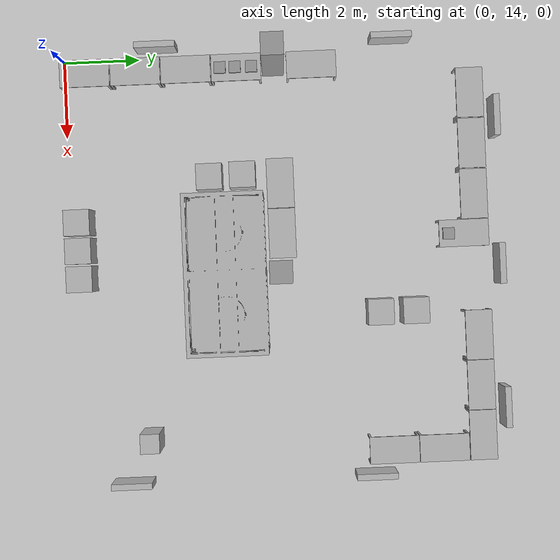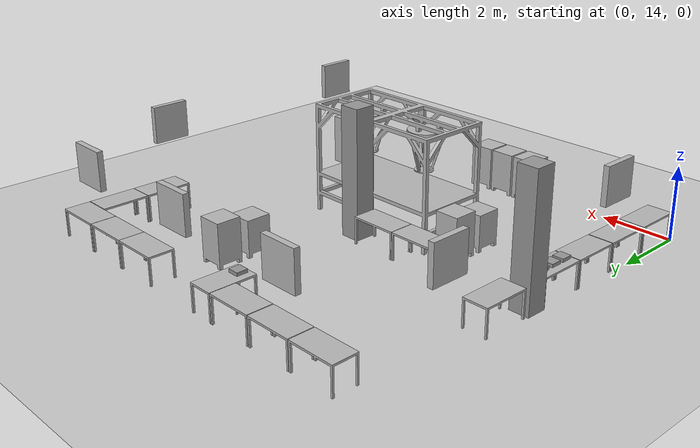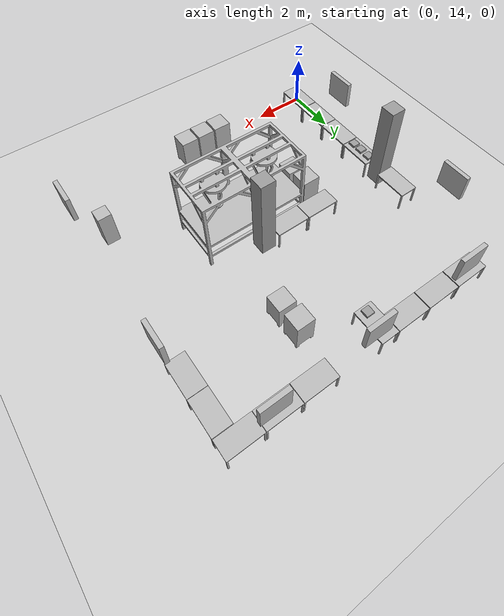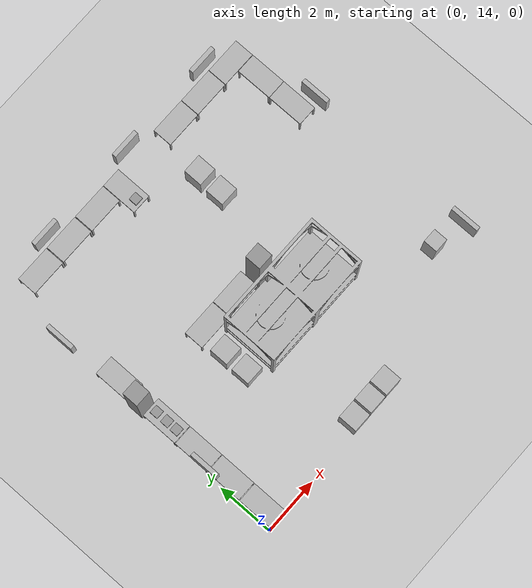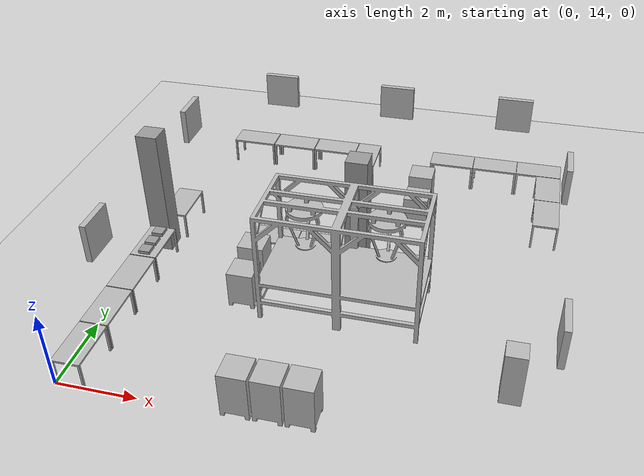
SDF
<sdf version="1.7">
 <world name="default">
  <model name="ground_plane">
   <static>1</static>
   <link name="link">
    <collision name="collision">
     <geometry><plane><normal>0 0 1</normal><size>100 100</size></plane></geometry>
     <surface>
      <contact><collide_bitmask>65535</collide_bitmask></contact>
      <friction><ode><mu>100</mu><mu2>50</mu2></ode></friction>
     </surface>
    </collision>
    <visual name="visual">
     <cast_shadows>0</cast_shadows>
     <geometry><plane><normal>0 0 1</normal><size>100 100</size></plane></geometry>
     <material>
      <script><uri>file://media/materials/scripts/gazebo.material</uri><name>Gazebo/Grey</name></script>
     </material>
    </visual>
   </link>
  </model>
  <model name="moving_box2">
   <pose>10 16 0.5 0 0 0</pose>
   <static>false</static>
   <link name="link">
    <collision name="collision"><geometry><box><size>0.5 0.5 1.8</size></box></geometry></collision>
    <visual name="visual">
     <geometry><box><size>0.5 0.5 1.8</size></box></geometry>
     <material>Gray</material>
    </visual>
   </link>
   <plugin name="move_box_plugin" filename="libmoving_box2_plugin.so"/>
  </model>
  <model name="stolac1">
   <static>1</static>
   <link name="base_link">
    <visual name="visual">
     <geometry>
      <mesh><uri>model://stolac1/meshes/crta_stolac1.STL</uri><scale>0.001 0.001 0.001</scale></mesh>
     </geometry>
    </visual>
    <collision name="collision">
     <pose>0.645 0.35 0.375 0 -0 0</pose>
     <geometry><box><size>1.29 0.7 0.75</size></box></geometry>
    </collision>
   </link>
   <pose>0.75 19.8747 0 0 -0 1.5708</pose>
  </model>
  <model name="crta_stup">
   <link name="link_0">
    <inertial>
     <mass>1</mass>
     <inertia>
      <ixx>0.166667</ixx>
      <ixy>0</ixy>
      <ixz>0</ixz>
      <iyy>0.166667</iyy>
      <iyz>0</iyz>
      <izz>0.166667</izz>
     </inertia>
    </inertial>
    <visual name="visual">
     <geometry><box><size>0.56 0.56 3.5</size></box></geometry>
     <material>
      <lighting>1</lighting>
      <script><uri>file://media/materials/scripts/gazebo.material</uri><name>Gazebo/Grey</name></script>
      <shader type="pixel"><normal_map>__default__</normal_map></shader>
      <ambient>0.3 0.3 0.3 1</ambient>
      <diffuse>0.7 0.7 0.7 1</diffuse>
      <specular>0.01 0.01 0.01 1</specular>
      <emissive>0 0 0 1</emissive>
     </material>
    </visual>
    <collision name="collision">
     <geometry><box><size>0.56 0.56 3.5</size></box></geometry>
     <surface>
      <friction>
       <ode><mu>1</mu><mu2>1</mu2><fdir1>0 0 0</fdir1><slip1>0</slip1><slip2>0</slip2></ode>
       <torsional>
        <coefficient>1</coefficient>
        <patch_radius>0</patch_radius>
        <surface_radius>0</surface_radius>
        <use_patch_radius>1</use_patch_radius>
        <ode><slip>0</slip></ode>
       </torsional>
      </friction>
      <bounce><restitution_coefficient>0</restitution_coefficient><threshold>1e+06</threshold></bounce>
      <contact>
       <collide_without_contact>0</collide_without_contact>
       <collide_without_contact_bitmask>1</collide_without_contact_bitmask>
       <collide_bitmask>1</collide_bitmask>
       <ode>
        <soft_cfm>0</soft_cfm>
        <soft_erp>0.2</soft_erp>
        <kp>1e+13</kp>
        <kd>1</kd>
        <max_vel>0.01</max_vel>
        <min_depth>0</min_depth>
       </ode>
       <bullet>
        <split_impulse>1</split_impulse>
        <split_impulse_penetration_threshold>-0.01</split_impulse_penetration_threshold>
        <soft_cfm>0</soft_cfm>
        <soft_erp>0.2</soft_erp>
        <kp>1e+13</kp>
        <kd>1</kd>
       </bullet>
      </contact>
     </surface>
    </collision>
   </link>
   <static>1</static>
   <pose>5.74 19.52 1.75 0 -0 0</pose>
  </model>
  <model name="crta_stup_clone">
   <link name="link_0">
    <inertial>
     <mass>1</mass>
     <inertia>
      <ixx>0.166667</ixx>
      <ixy>0</ixy>
      <ixz>0</ixz>
      <iyy>0.166667</iyy>
      <iyz>0</iyz>
      <izz>0.166667</izz>
     </inertia>
    </inertial>
    <visual name="visual">
     <geometry><box><size>0.56 0.56 3.5</size></box></geometry>
     <material>
      <lighting>1</lighting>
      <script><uri>file://media/materials/scripts/gazebo.material</uri><name>Gazebo/Grey</name></script>
      <shader type="pixel"><normal_map>__default__</normal_map></shader>
      <ambient>0.3 0.3 0.3 1</ambient>
      <diffuse>0.7 0.7 0.7 1</diffuse>
      <specular>0.01 0.01 0.01 1</specular>
      <emissive>0 0 0 1</emissive>
     </material>
    </visual>
    <collision name="collision">
     <geometry><box><size>0.56 0.56 3.5</size></box></geometry>
     <surface>
      <friction>
       <ode><mu>1</mu><mu2>1</mu2><fdir1>0 0 0</fdir1><slip1>0</slip1><slip2>0</slip2></ode>
       <torsional>
        <coefficient>1</coefficient>
        <patch_radius>0</patch_radius>
        <surface_radius>0</surface_radius>
        <use_patch_radius>1</use_patch_radius>
        <ode><slip>0</slip></ode>
       </torsional>
      </friction>
      <bounce><restitution_coefficient>0</restitution_coefficient><threshold>1e+06</threshold></bounce>
      <contact>
       <collide_without_contact>0</collide_without_contact>
       <collide_without_contact_bitmask>1</collide_without_contact_bitmask>
       <collide_bitmask>1</collide_bitmask>
       <ode>
        <soft_cfm>0</soft_cfm>
        <soft_erp>0.2</soft_erp>
        <kp>1e+13</kp>
        <kd>1</kd>
        <max_vel>0.01</max_vel>
        <min_depth>0</min_depth>
       </ode>
       <bullet>
        <split_impulse>1</split_impulse>
        <split_impulse_penetration_threshold>-0.01</split_impulse_penetration_threshold>
        <soft_cfm>0</soft_cfm>
        <soft_erp>0.2</soft_erp>
        <kp>1e+13</kp>
        <kd>1</kd>
       </bullet>
      </contact>
     </surface>
    </collision>
   </link>
   <static>1</static>
   <pose>0.28 19.52 1.75 -0 -2e-06 -0.0003</pose>
  </model>
  <model name="stolac1_clone">
   <static>1</static>
   <link name="base_link">
    <visual name="visual">
     <geometry>
      <mesh><uri>model://stolac1/meshes/crta_stolac1.STL</uri><scale>0.001 0.001 0.001</scale></mesh>
     </geometry>
    </visual>
    <collision name="collision">
     <pose>0.645 0.35 0.375 0 -0 0</pose>
     <geometry><box><size>1.29 0.7 0.75</size></box></geometry>
    </collision>
   </link>
   <pose>0.75 17.92 0 0 -0 1.5708</pose>
  </model>
  <model name="stolac1_clone_0">
   <static>1</static>
   <link name="base_link">
    <visual name="visual">
     <geometry>
      <mesh><uri>model://stolac1/meshes/crta_stolac1.STL</uri><scale>0.001 0.001 0.001</scale></mesh>
     </geometry>
    </visual>
    <collision name="collision">
     <pose>0.645 0.35 0.375 0 -0 0</pose>
     <geometry><box><size>1.29 0.7 0.75</size></box></geometry>
    </collision>
   </link>
   <pose>0.75 16.608 0 0 -0 1.5708</pose>
  </model>
  <model name="stolac1_clone_1">
   <static>1</static>
   <link name="base_link">
    <visual name="visual">
     <geometry>
      <mesh><uri>model://stolac1/meshes/crta_stolac1.STL</uri><scale>0.001 0.001 0.001</scale></mesh>
     </geometry>
    </visual>
    <collision name="collision">
     <pose>0.645 0.35 0.375 0 -0 0</pose>
     <geometry><box><size>1.29 0.7 0.75</size></box></geometry>
    </collision>
   </link>
   <pose>0.75 15.2957 0 0 -0 1.5708</pose>
  </model>
  <model name="stolac1_clone_2">
   <static>1</static>
   <link name="base_link">
    <visual name="visual">
     <geometry>
      <mesh><uri>model://stolac1/meshes/crta_stolac1.STL</uri><scale>0.001 0.001 0.001</scale></mesh>
     </geometry>
    </visual>
    <collision name="collision">
     <pose>0.645 0.35 0.375 0 -0 0</pose>
     <geometry><box><size>1.29 0.7 0.75</size></box></geometry>
    </collision>
   </link>
   <pose>0.75 13.9784 0 0 -0 1.5708</pose>
  </model>
  <model name="stolac1_clone_7">
   <static>1</static>
   <link name="base_link">
    <visual name="visual">
     <geometry>
      <mesh><uri>model://stolac1/meshes/crta_stolac1.STL</uri><scale>0.001 0.001 0.001</scale></mesh>
     </geometry>
    </visual>
    <collision name="collision">
     <pose>0.645 0.35 0.375 0 -0 0</pose>
     <geometry><box><size>1.29 0.7 0.75</size></box></geometry>
    </collision>
   </link>
   <pose>0.65 24.25 0 0 -0 0</pose>
  </model>
  <model name="stolac1_clone_7_clone">
   <static>1</static>
   <link name="base_link">
    <visual name="visual">
     <geometry>
      <mesh><uri>model://stolac1/meshes/crta_stolac1.STL</uri><scale>0.001 0.001 0.001</scale></mesh>
     </geometry>
    </visual>
    <collision name="collision">
     <pose>0.645 0.35 0.375 0 -0 0</pose>
     <geometry><box><size>1.29 0.7 0.75</size></box></geometry>
    </collision>
   </link>
   <pose>1.96622 24.25 0 0 -0 0</pose>
  </model>
  <model name="stolac1_clone_7_clone_0">
   <static>1</static>
   <link name="base_link">
    <visual name="visual">
     <geometry>
      <mesh><uri>model://stolac1/meshes/crta_stolac1.STL</uri><scale>0.001 0.001 0.001</scale></mesh>
     </geometry>
    </visual>
    <collision name="collision">
     <pose>0.645 0.35 0.375 0 -0 0</pose>
     <geometry><box><size>1.29 0.7 0.75</size></box></geometry>
    </collision>
   </link>
   <pose>3.28164 24.25 0 0 -0 0</pose>
  </model>
  <model name="stolac1_clone_8">
   <static>1</static>
   <link name="base_link">
    <visual name="visual">
     <geometry>
      <mesh><uri>model://stolac1/meshes/crta_stolac1.STL</uri><scale>0.001 0.001 0.001</scale></mesh>
     </geometry>
    </visual>
    <collision name="collision">
     <pose>0.645 0.35 0.375 0 -0 0</pose>
     <geometry><box><size>1.29 0.7 0.75</size></box></geometry>
    </collision>
   </link>
   <pose>5.28721 23.6603 0 0 -0 1.5708</pose>
  </model>
  <model name="stolac1_clone_7_clone_0_clone">
   <static>1</static>
   <link name="base_link">
    <visual name="visual">
     <geometry>
      <mesh><uri>model://stolac1/meshes/crta_stolac1.STL</uri><scale>0.001 0.001 0.001</scale></mesh>
     </geometry>
    </visual>
    <collision name="collision">
     <pose>0.645 0.35 0.375 0 -0 0</pose>
     <geometry><box><size>1.29 0.7 0.75</size></box></geometry>
    </collision>
   </link>
   <pose>9.55232 24.25 0 0 -0 0</pose>
  </model>
  <model name="stolac1_clone_7_clone_0_clone_0">
   <static>1</static>
   <link name="base_link">
    <visual name="visual">
     <geometry>
      <mesh><uri>model://stolac1/meshes/crta_stolac1.STL</uri><scale>0.001 0.001 0.001</scale></mesh>
     </geometry>
    </visual>
    <collision name="collision">
     <pose>0.645 0.35 0.375 0 -0 0</pose>
     <geometry><box><size>1.29 0.7 0.75</size></box></geometry>
    </collision>
   </link>
   <pose>8.2516 24.25 0 0 -0 0</pose>
  </model>
  <model name="stolac1_clone_7_clone_0_clone_1">
   <static>1</static>
   <link name="base_link">
    <visual name="visual">
     <geometry>
      <mesh><uri>model://stolac1/meshes/crta_stolac1.STL</uri><scale>0.001 0.001 0.001</scale></mesh>
     </geometry>
    </visual>
    <collision name="collision">
     <pose>0.645 0.35 0.375 0 -0 0</pose>
     <geometry><box><size>1.29 0.7 0.75</size></box></geometry>
    </collision>
   </link>
   <pose>6.94989 24.25 0 0 -0 0</pose>
  </model>
  <model name="stolac1_clone_8_clone">
   <static>1</static>
   <link name="base_link">
    <visual name="visual">
     <geometry>
      <mesh><uri>model://stolac1/meshes/crta_stolac1.STL</uri><scale>0.001 0.001 0.001</scale></mesh>
     </geometry>
    </visual>
    <collision name="collision">
     <pose>0.645 0.35 0.375 0 -0 0</pose>
     <geometry><box><size>1.29 0.7 0.75</size></box></geometry>
    </collision>
   </link>
   <pose>10.845 22.9418 0 0 -0 1.5708</pose>
  </model>
  <model name="stolac1_clone_8_clone_0">
   <static>1</static>
   <link name="base_link">
    <visual name="visual">
     <geometry>
      <mesh><uri>model://stolac1/meshes/crta_stolac1.STL</uri><scale>0.001 0.001 0.001</scale></mesh>
     </geometry>
    </visual>
    <collision name="collision">
     <pose>0.645 0.35 0.375 0 -0 0</pose>
     <geometry><box><size>1.29 0.7 0.75</size></box></geometry>
    </collision>
   </link>
   <pose>10.8463 21.6409 0 0 -0 1.5708</pose>
  </model>
  <model name="crta_delta_robot">
   <model name="delta_robot">
    <static>1</static>
    <link name="base_link">
     <visual name="visual">
      <geometry>
       <mesh><uri>model://delta_robot/meshes/crta_delta_robot.STL</uri><scale>0.001 0.001 0.001</scale></mesh>
      </geometry>
     </visual>
     <collision name="collision">
      <pose>2 1 1.5 0 -0 0</pose>
      <geometry><box><size>4 2 3</size></box></geometry>
     </collision>
    </link>
    <pose>1e-06 5e-06 0 0 -0 0</pose>
   </model>
   <static>0</static>
   <pose>3.74 17.15 0 0 -0 0</pose>
  </model>
  <model name="stolac1_clone_7_clone_0_clone_1_clone">
   <static>1</static>
   <link name="base_link">
    <visual name="visual">
     <geometry>
      <mesh><uri>model://stolac1/meshes/crta_stolac1.STL</uri><scale>0.001 0.001 0.001</scale></mesh>
     </geometry>
    </visual>
    <collision name="collision">
     <pose>0.645 0.35 0.375 0 -0 0</pose>
     <geometry><box><size>1.29 0.7 0.75</size></box></geometry>
    </collision>
   </link>
   <pose>4.10999 19.2429 0 0 -0 0</pose>
  </model>
  <model name="stolac1_clone_7_clone_0_clone_1_clone_0">
   <static>1</static>
   <link name="base_link">
    <visual name="visual">
     <geometry>
      <mesh><uri>model://stolac1/meshes/crta_stolac1.STL</uri><scale>0.001 0.001 0.001</scale></mesh>
     </geometry>
    </visual>
    <collision name="collision">
     <pose>0.645 0.35 0.375 0 -0 0</pose>
     <geometry><box><size>1.29 0.7 0.75</size></box></geometry>
    </collision>
   </link>
   <pose>2.80473 19.2437 0 0 -0 0</pose>
  </model>
  <model name="kutija1">
   <static>1</static>
   <link name="base_link">
    <visual name="visual">
     <geometry>
      <mesh><uri>model://kutija1/meshes/crta_kutija1.STL</uri><scale>0.001 0.001 0.001</scale></mesh>
     </geometry>
    </visual>
    <collision name="collision">
     <pose>0.335 0.335 0.6 0 -0 0</pose>
     <geometry><box><size>0.67 0.67 1.2</size></box></geometry>
    </collision>
   </link>
   <pose>2.87784 18.2903 0 0 -0 0</pose>
  </model>
  <model name="kutija1_0">
   <static>1</static>
   <link name="base_link">
    <visual name="visual">
     <geometry>
      <mesh><uri>model://kutija2/meshes/crta_kutija2.STL</uri><scale>0.001 0.001 0.001</scale></mesh>
     </geometry>
    </visual>
    <collision name="collision">
     <pose>0.335 0.335 0.5 0 -0 0</pose>
     <geometry><box><size>0.67 0.67 1</size></box></geometry>
    </collision>
   </link>
   <pose>2.88315 17.4229 0 0 -0 0</pose>
  </model>
  <model name="kutija1_clone">
   <static>1</static>
   <link name="base_link">
    <visual name="visual">
     <geometry>
      <mesh><uri>model://kutija1/meshes/crta_kutija1.STL</uri><scale>0.001 0.001 0.001</scale></mesh>
     </geometry>
    </visual>
    <collision name="collision">
     <pose>0.335 0.335 0.6 0 -0 0</pose>
     <geometry><box><size>0.67 0.67 1.2</size></box></geometry>
    </collision>
   </link>
   <pose>5.40022 14.0046 0 0 -0 0</pose>
  </model>
  <model name="kutija1_clone_0">
   <static>1</static>
   <link name="base_link">
    <visual name="visual">
     <geometry>
      <mesh><uri>model://kutija1/meshes/crta_kutija1.STL</uri><scale>0.001 0.001 0.001</scale></mesh>
     </geometry>
    </visual>
    <collision name="collision">
     <pose>0.335 0.335 0.6 0 -0 0</pose>
     <geometry><box><size>0.67 0.67 1.2</size></box></geometry>
    </collision>
   </link>
   <pose>4.67597 13.9994 0 0 -0 0</pose>
  </model>
  <model name="kutija1_clone_1">
   <static>1</static>
   <link name="base_link">
    <visual name="visual">
     <geometry>
      <mesh><uri>model://kutija1/meshes/crta_kutija1.STL</uri><scale>0.001 0.001 0.001</scale></mesh>
     </geometry>
    </visual>
    <collision name="collision">
     <pose>0.335 0.335 0.6 0 -0 0</pose>
     <geometry><box><size>0.67 0.67 1.2</size></box></geometry>
    </collision>
   </link>
   <pose>3.94529 13.9909 0 0 -0 0</pose>
  </model>
  <model name="kutija1_0_clone_0">
   <static>1</static>
   <link name="base_link">
    <visual name="visual">
     <geometry>
      <mesh><uri>model://kutija2/meshes/crta_kutija2.STL</uri><scale>0.001 0.001 0.001</scale></mesh>
     </geometry>
    </visual>
    <collision name="collision">
     <pose>0.335 0.335 0.5 0 -0 0</pose>
     <geometry><box><size>0.67 0.67 1</size></box></geometry>
    </collision>
   </link>
   <pose>6.55778 21.7269 0 0 -0 0</pose>
  </model>
  <model name="kutija1_clone_1_clone">
   <static>1</static>
   <link name="base_link">
    <visual name="visual">
     <geometry>
      <mesh><uri>model://kutija1/meshes/crta_kutija1.STL</uri><scale>0.001 0.001 0.001</scale></mesh>
     </geometry>
    </visual>
    <collision name="collision">
     <pose>0.335 0.335 0.6 0 -0 0</pose>
     <geometry><box><size>0.67 0.67 1.2</size></box></geometry>
    </collision>
   </link>
   <pose>6.54763 22.6166 0 0 -0 0</pose>
  </model>
  <model name="crta_astro">
   <link name="link_1">
    <inertial>
     <mass>1</mass>
     <inertia>
      <ixx>0.166667</ixx>
      <ixy>0</ixy>
      <ixz>0</ixz>
      <iyy>0.166667</iyy>
      <iyz>0</iyz>
      <izz>0.166667</izz>
     </inertia>
    </inertial>
    <visual name="visual">
     <geometry><box><size>0.3 0.3 0.09</size></box></geometry>
     <material>
      <lighting>1</lighting>
      <script><uri>file://media/materials/scripts/gazebo.material</uri><name>Gazebo/Grey</name></script>
      <shader type="pixel"><normal_map>__default__</normal_map></shader>
      <ambient>0.3 0.3 0.3 1</ambient>
      <diffuse>0.7 0.7 0.7 1</diffuse>
      <specular>0.01 0.01 0.01 1</specular>
      <emissive>0 0 0 1</emissive>
     </material>
    </visual>
    <collision name="collision">
     <geometry><box><size>0.3 0.3 0.09</size></box></geometry>
     <surface>
      <friction>
       <ode><mu>1</mu><mu2>1</mu2><fdir1>0 0 0</fdir1><slip1>0</slip1><slip2>0</slip2></ode>
       <torsional>
        <coefficient>1</coefficient>
        <patch_radius>0</patch_radius>
        <surface_radius>0</surface_radius>
        <use_patch_radius>1</use_patch_radius>
        <ode><slip>0</slip></ode>
       </torsional>
      </friction>
      <bounce><restitution_coefficient>0</restitution_coefficient><threshold>1e+06</threshold></bounce>
      <contact>
       <collide_without_contact>0</collide_without_contact>
       <collide_without_contact_bitmask>1</collide_without_contact_bitmask>
       <collide_bitmask>1</collide_bitmask>
       <ode>
        <soft_cfm>0</soft_cfm>
        <soft_erp>0.2</soft_erp>
        <kp>1e+13</kp>
        <kd>1</kd>
        <max_vel>0.01</max_vel>
        <min_depth>0</min_depth>
       </ode>
       <bullet>
        <split_impulse>1</split_impulse>
        <split_impulse_penetration_threshold>-0.01</split_impulse_penetration_threshold>
        <soft_cfm>0</soft_cfm>
        <soft_erp>0.2</soft_erp>
        <kp>1e+13</kp>
        <kd>1</kd>
       </bullet>
      </contact>
     </surface>
    </collision>
   </link>
   <static>0</static>
   <pose>0.400456 18.963 0.795 -0 -0 -0</pose>
  </model>
  <model name="crta_astro_clone">
   <link name="link_1">
    <inertial>
     <mass>1</mass>
     <inertia>
      <ixx>0.166667</ixx>
      <ixy>0</ixy>
      <ixz>0</ixz>
      <iyy>0.166667</iyy>
      <iyz>0</iyz>
      <izz>0.166667</izz>
     </inertia>
    </inertial>
    <visual name="visual">
     <geometry><box><size>0.3 0.3 0.09</size></box></geometry>
     <material>
      <lighting>1</lighting>
      <script><uri>file://media/materials/scripts/gazebo.material</uri><name>Gazebo/Grey</name></script>
      <shader type="pixel"><normal_map>__default__</normal_map></shader>
      <ambient>0.3 0.3 0.3 1</ambient>
      <diffuse>0.7 0.7 0.7 1</diffuse>
      <specular>0.01 0.01 0.01 1</specular>
      <emissive>0 0 0 1</emissive>
     </material>
    </visual>
    <collision name="collision">
     <geometry><box><size>0.3 0.3 0.09</size></box></geometry>
     <surface>
      <friction>
       <ode><mu>1</mu><mu2>1</mu2><fdir1>0 0 0</fdir1><slip1>0</slip1><slip2>0</slip2></ode>
       <torsional>
        <coefficient>1</coefficient>
        <patch_radius>0</patch_radius>
        <surface_radius>0</surface_radius>
        <use_patch_radius>1</use_patch_radius>
        <ode><slip>0</slip></ode>
       </torsional>
      </friction>
      <bounce><restitution_coefficient>0</restitution_coefficient><threshold>1e+06</threshold></bounce>
      <contact>
       <collide_without_contact>0</collide_without_contact>
       <collide_without_contact_bitmask>1</collide_without_contact_bitmask>
       <collide_bitmask>1</collide_bitmask>
       <ode>
        <soft_cfm>0</soft_cfm>
        <soft_erp>0.2</soft_erp>
        <kp>1e+13</kp>
        <kd>1</kd>
        <max_vel>0.01</max_vel>
        <min_depth>0</min_depth>
       </ode>
       <bullet>
        <split_impulse>1</split_impulse>
        <split_impulse_penetration_threshold>-0.01</split_impulse_penetration_threshold>
        <soft_cfm>0</soft_cfm>
        <soft_erp>0.2</soft_erp>
        <kp>1e+13</kp>
        <kd>1</kd>
       </bullet>
      </contact>
     </surface>
    </collision>
   </link>
   <static>0</static>
   <pose>0.400118 18.5366 0.795 -0 -0 -0</pose>
  </model>
  <model name="crta_astro_clone_0">
   <link name="link_1">
    <inertial>
     <mass>1</mass>
     <inertia>
      <ixx>0.166667</ixx>
      <ixy>0</ixy>
      <ixz>0</ixz>
      <iyy>0.166667</iyy>
      <iyz>0</iyz>
      <izz>0.166667</izz>
     </inertia>
    </inertial>
    <visual name="visual">
     <geometry><box><size>0.3 0.3 0.09</size></box></geometry>
     <material>
      <lighting>1</lighting>
      <script><uri>file://media/materials/scripts/gazebo.material</uri><name>Gazebo/Grey</name></script>
      <shader type="pixel"><normal_map>__default__</normal_map></shader>
      <ambient>0.3 0.3 0.3 1</ambient>
      <diffuse>0.7 0.7 0.7 1</diffuse>
      <specular>0.01 0.01 0.01 1</specular>
      <emissive>0 0 0 1</emissive>
     </material>
    </visual>
    <collision name="collision">
     <geometry><box><size>0.3 0.3 0.09</size></box></geometry>
     <surface>
      <friction>
       <ode><mu>1</mu><mu2>1</mu2><fdir1>0 0 0</fdir1><slip1>0</slip1><slip2>0</slip2></ode>
       <torsional>
        <coefficient>1</coefficient>
        <patch_radius>0</patch_radius>
        <surface_radius>0</surface_radius>
        <use_patch_radius>1</use_patch_radius>
        <ode><slip>0</slip></ode>
       </torsional>
      </friction>
      <bounce><restitution_coefficient>0</restitution_coefficient><threshold>1e+06</threshold></bounce>
      <contact>
       <collide_without_contact>0</collide_without_contact>
       <collide_without_contact_bitmask>1</collide_without_contact_bitmask>
       <collide_bitmask>1</collide_bitmask>
       <ode>
        <soft_cfm>0</soft_cfm>
        <soft_erp>0.2</soft_erp>
        <kp>1e+13</kp>
        <kd>1</kd>
        <max_vel>0.01</max_vel>
        <min_depth>0</min_depth>
       </ode>
       <bullet>
        <split_impulse>1</split_impulse>
        <split_impulse_penetration_threshold>-0.01</split_impulse_penetration_threshold>
        <soft_cfm>0</soft_cfm>
        <soft_erp>0.2</soft_erp>
        <kp>1e+13</kp>
        <kd>1</kd>
       </bullet>
      </contact>
     </surface>
    </collision>
   </link>
   <static>0</static>
   <pose>0.400281 18.147 0.795 -0 -0 -0</pose>
  </model>
  <model name="crta_astro_clone_1">
   <link name="link_1">
    <inertial>
     <mass>1</mass>
     <inertia>
      <ixx>0.166667</ixx>
      <ixy>0</ixy>
      <ixz>0</ixz>
      <iyy>0.166667</iyy>
      <iyz>0</iyz>
      <izz>0.166667</izz>
     </inertia>
    </inertial>
    <visual name="visual">
     <geometry><box><size>0.3 0.3 0.09</size></box></geometry>
     <material>
      <lighting>1</lighting>
      <script><uri>file://media/materials/scripts/gazebo.material</uri><name>Gazebo/Grey</name></script>
      <shader type="pixel"><normal_map>__default__</normal_map></shader>
      <ambient>0.3 0.3 0.3 1</ambient>
      <diffuse>0.7 0.7 0.7 1</diffuse>
      <specular>0.01 0.01 0.01 1</specular>
      <emissive>0 0 0 1</emissive>
     </material>
    </visual>
    <collision name="collision">
     <geometry><box><size>0.3 0.3 0.09</size></box></geometry>
     <surface>
      <friction>
       <ode><mu>1</mu><mu2>1</mu2><fdir1>0 0 0</fdir1><slip1>0</slip1><slip2>0</slip2></ode>
       <torsional>
        <coefficient>1</coefficient>
        <patch_radius>0</patch_radius>
        <surface_radius>0</surface_radius>
        <use_patch_radius>1</use_patch_radius>
        <ode><slip>0</slip></ode>
       </torsional>
      </friction>
      <bounce><restitution_coefficient>0</restitution_coefficient><threshold>1e+06</threshold></bounce>
      <contact>
       <collide_without_contact>0</collide_without_contact>
       <collide_without_contact_bitmask>1</collide_without_contact_bitmask>
       <collide_bitmask>1</collide_bitmask>
       <ode>
        <soft_cfm>0</soft_cfm>
        <soft_erp>0.2</soft_erp>
        <kp>1e+13</kp>
        <kd>1</kd>
        <max_vel>0.01</max_vel>
        <min_depth>0</min_depth>
       </ode>
       <bullet>
        <split_impulse>1</split_impulse>
        <split_impulse_penetration_threshold>-0.01</split_impulse_penetration_threshold>
        <soft_cfm>0</soft_cfm>
        <soft_erp>0.2</soft_erp>
        <kp>1e+13</kp>
        <kd>1</kd>
       </bullet>
      </contact>
     </surface>
    </collision>
   </link>
   <static>0</static>
   <pose>4.93996 23.9015 0.795 -0 -0 -0</pose>
  </model>
  <model name="poster">
   <static>1</static>
   <link name="poster_link">
    <collision name="poster_collision">
     <geometry><box><size>1 0.15 1</size></box></geometry>
     <surface><contact><collide_without_contact>1</collide_without_contact></contact></surface>
    </collision>
    <visual name="poster_visual">
     <geometry><box><size>1 0.15 1</size></box></geometry>
     <material>
      <script>
       <uri>model://poster/materials/scripts</uri>
       <uri>model://poster/materials/textures</uri>
       <name>Poster/PosterTexture</name>
      </script>
     </material>
    </visual>
   </link>
   <pose>2.11903 24.9237 2.34482 0 -0 0</pose>
  </model>
  <model name="poster_clone">
   <static>1</static>
   <link name="poster_link">
    <collision name="poster_collision">
     <geometry><box><size>1 0.15 1</size></box></geometry>
     <surface><contact><collide_without_contact>1</collide_without_contact></contact></surface>
    </collision>
    <visual name="poster_visual">
     <geometry><box><size>1 0.15 1</size></box></geometry>
     <material>
      <script>
       <uri>model://poster/materials/scripts</uri>
       <uri>model://poster/materials/textures</uri>
       <name>Poster/PosterTexture</name>
      </script>
     </material>
    </visual>
   </link>
   <pose>5.74334 24.925 2.34482 0 -0 0</pose>
  </model>
  <model name="poster_clone_clone">
   <static>1</static>
   <link name="poster_link">
    <collision name="poster_collision">
     <geometry><box><size>1 0.15 1</size></box></geometry>
     <surface><contact><collide_without_contact>1</collide_without_contact></contact></surface>
    </collision>
    <visual name="poster_visual">
     <geometry><box><size>1 0.15 1</size></box></geometry>
     <material>
      <script>
       <uri>model://poster/materials/scripts</uri>
       <uri>model://poster/materials/textures</uri>
       <name>Poster/PosterTexture</name>
      </script>
     </material>
    </visual>
   </link>
   <pose>9.25875 24.925 2.34482 0 -0 0</pose>
  </model>
  <model name="poster_clone_clone_0">
   <static>1</static>
   <link name="poster_link">
    <collision name="poster_collision">
     <geometry><box><size>1 0.15 1</size></box></geometry>
     <surface><contact><collide_without_contact>1</collide_without_contact></contact></surface>
    </collision>
    <visual name="poster_visual">
     <geometry><box><size>1 0.15 1</size></box></geometry>
     <material>
      <script>
       <uri>model://poster/materials/scripts</uri>
       <uri>model://poster/materials/textures</uri>
       <name>Poster/PosterTexture</name>
      </script>
     </material>
    </visual>
   </link>
   <pose>10.8233 21.6735 2.34482 0 0 -1.5708</pose>
  </model>
  <model name="poster_clone_clone_0_clone">
   <static>1</static>
   <link name="poster_link">
    <collision name="poster_collision">
     <geometry><box><size>1 0.15 1</size></box></geometry>
     <surface><contact><collide_without_contact>1</collide_without_contact></contact></surface>
    </collision>
    <visual name="poster_visual">
     <geometry><box><size>1 0.15 1</size></box></geometry>
     <material>
      <script>
       <uri>model://poster/materials/scripts</uri>
       <uri>model://poster/materials/textures</uri>
       <name>Poster/PosterTexture</name>
      </script>
     </material>
    </visual>
   </link>
   <pose>10.823 15.6754 2.34482 0 0 -1.5708</pose>
  </model>
  <model name="poster_clone_clone_0_clone_2">
   <static>1</static>
   <link name="poster_link">
    <collision name="poster_collision">
     <geometry><box><size>1 0.15 1</size></box></geometry>
     <surface><contact><collide_without_contact>1</collide_without_contact></contact></surface>
    </collision>
    <visual name="poster_visual">
     <geometry><box><size>1 0.15 1</size></box></geometry>
     <material>
      <script>
       <uri>model://poster/materials/scripts</uri>
       <uri>model://poster/materials/textures</uri>
       <name>Poster/PosterTexture</name>
      </script>
     </material>
    </visual>
   </link>
   <pose>0.070421 22.428 2.34482 0 0 -1.5708</pose>
  </model>
  <model name="poster_clone_clone_0_clone_3">
   <static>1</static>
   <link name="poster_link">
    <collision name="poster_collision">
     <geometry><box><size>1 0.15 1</size></box></geometry>
     <surface><contact><collide_without_contact>1</collide_without_contact></contact></surface>
    </collision>
    <visual name="poster_visual">
     <geometry><box><size>1 0.15 1</size></box></geometry>
     <material>
      <script>
       <uri>model://poster/materials/scripts</uri>
       <uri>model://poster/materials/textures</uri>
       <name>Poster/PosterTexture</name>
      </script>
     </material>
    </visual>
   </link>
   <pose>0.07 16.6515 2.34482 0 0 -1.5708</pose>
  </model>
 </world>
</sdf>
